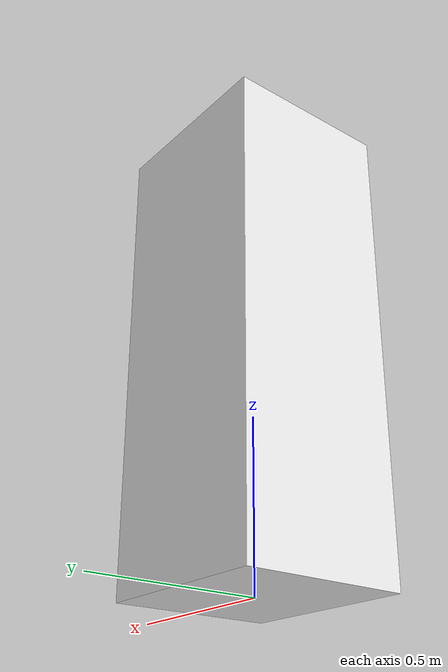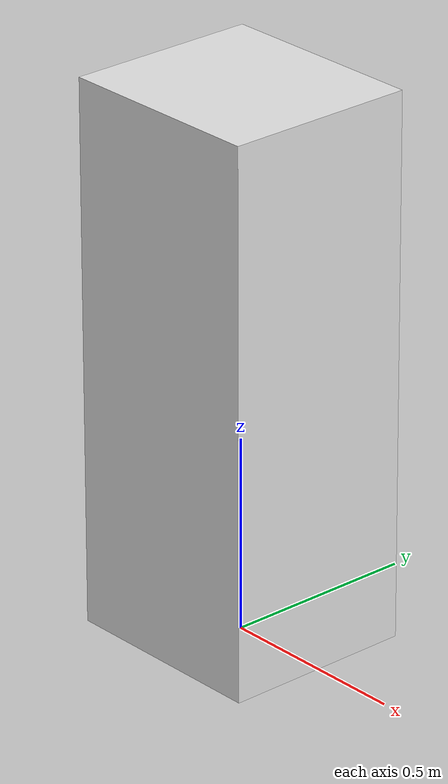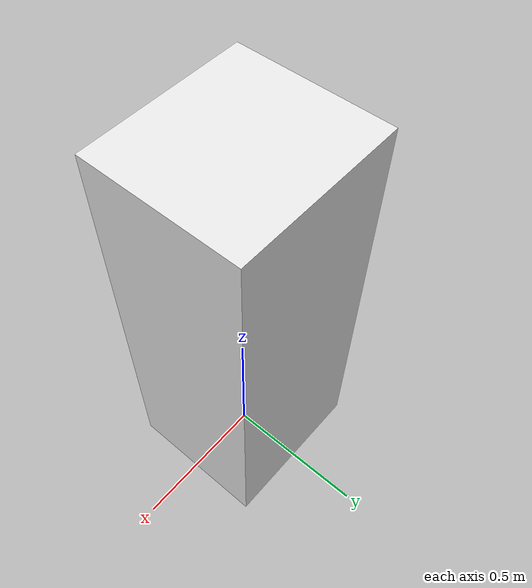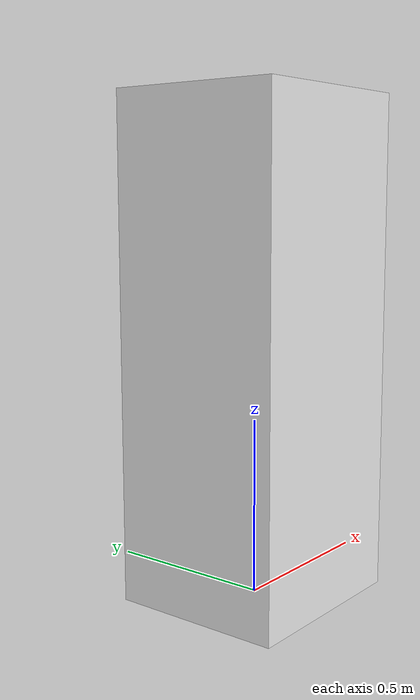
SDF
<?xml version="1.0"?>
<sdf version="1.6">
  <model name="rwc2015/fridge">
    <link name="1_link">
      <collision name="1_col">
        <geometry>
          <box>
            <size>0.545 0.495 1.395</size>
          </box>
        </geometry>
      </collision>
      <visual name="1_vis">
        <geometry>
          <box>
            <size>0.545 0.495 1.395</size>
          </box>
        </geometry>
        <material>
          <ambient>0.9 0.9 0.9 1</ambient>
        </material>
      </visual>
      <pose>0.0 0.0 0.6975 0 0 0</pose>
    </link>
    <link name="in_front_of">
      <virtual_volume name="in_front_of_vv">
        <geometry>
          <box>
            <size>0.7 0.55 1</size>
          </box>
        </geometry>
        <pose>-0.65 -0.025 0.5 0 0 0</pose>
      </virtual_volume>
    </link>
    <static>true</static>
  </model>
</sdf>
